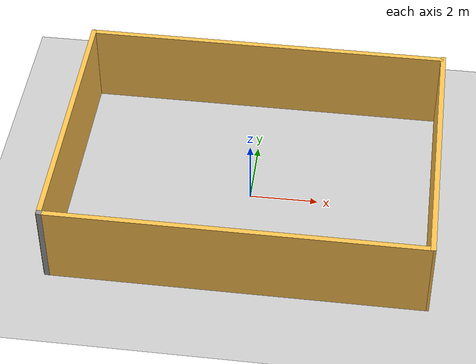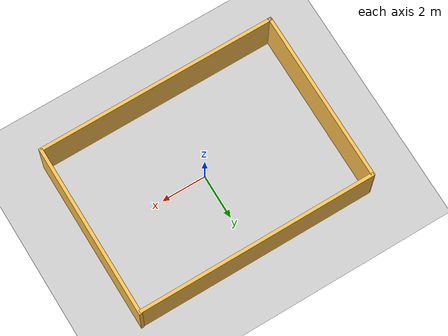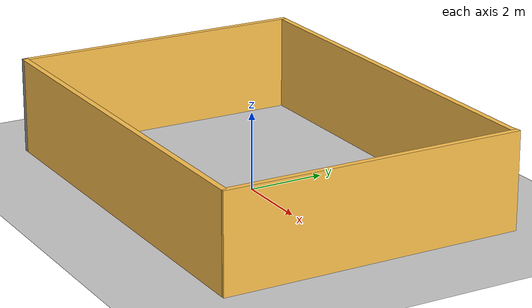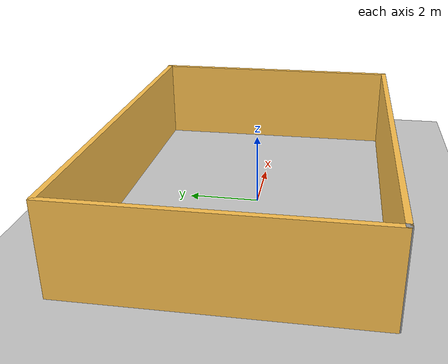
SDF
<sdf version="1.7">
 <world name="default">
  <light name="sun" type="directional">
   <pose>0 0 10 0 -0 0</pose>
   <diffuse>0.8 0.8 0.8 1</diffuse>
   <specular>0.2 0.2 0.2 1</specular>
   <attenuation>
    <range>1000</range>
    <constant>0.9</constant>
    <linear>0.01</linear>
    <quadratic>0.001</quadratic>
   </attenuation>
   <direction>-0.5 0.1 -0.9</direction>
   <spot><inner_angle>0</inner_angle><outer_angle>0</outer_angle><falloff>0</falloff></spot>
  </light>
  <model name="ground_plane">
   <static>1</static>
   <link name="link">
    <collision name="collision">
     <geometry><plane><normal>0 0 1</normal><size>100 100</size></plane></geometry>
     <surface><friction><ode><mu>100</mu><mu2>50</mu2></ode></friction></surface>
    </collision>
    <visual name="visual">
     <cast_shadows>0</cast_shadows>
     <geometry><plane><normal>0 0 1</normal><size>100 100</size></plane></geometry>
     <material>
      <script><uri>file://media/materials/scripts/gazebo.material</uri><name>Gazebo/Grey</name></script>
     </material>
    </visual>
   </link>
  </model>
  <gravity>0 0 -9.8</gravity>
  <magnetic_field>6e-06 2.3e-05 -4.2e-05</magnetic_field>
  <atmosphere type="adiabatic"/>
  <physics type="ode">
   <max_step_size>0.001</max_step_size>
   <real_time_factor>1</real_time_factor>
   <real_time_update_rate>1000</real_time_update_rate>
  </physics>
  <scene><ambient>0.4 0.4 0.4 1</ambient><background>0.7 0.7 0.7 1</background><shadows>1</shadows></scene>
  <audio><device>default</device></audio>
  <spherical_coordinates>
   <surface_model>EARTH_WGS84</surface_model>
   <latitude_deg>0</latitude_deg>
   <longitude_deg>0</longitude_deg>
   <elevation>0</elevation>
   <heading_deg>0</heading_deg>
  </spherical_coordinates>
  <model name="RRC4">
   <link name="Wall_0">
    <pose>-7.52045 -4.14704 0 0 -0 1.5708</pose>
    <inertial>
     <inertia><ixx>0</ixx><ixy>0</ixy><ixz>0</ixz><iyy>0</iyy><iyz>0</iyz><izz>0</izz></inertia>
     <mass>0</mass>
    </inertial>
    <visual name="Wall_0_Visual">
     <pose>0 0 1.25 0 -0 0</pose>
     <geometry><box><size>7.78779 0.15 2.5</size></box></geometry>
     <material>
      <script><uri>file://media/materials/scripts/gazebo.material</uri><name>Gazebo/Grey</name></script>
      <ambient>1 0.764706 0.305882 1</ambient>
      <shader type="pixel"/>
     </material>
     <meta><layer>0</layer></meta>
    </visual>
    <collision name="Wall_0_Collision">
     <pose>0 0 1.25 0 -0 0</pose>
     <geometry><box><size>7.78779 0.15 2.5</size></box></geometry>
     <surface>
      <friction>
       <ode><mu>1</mu><mu2>1</mu2><fdir1>0 0 0</fdir1><slip1>0</slip1><slip2>0</slip2></ode>
       <torsional>
        <coefficient>1</coefficient>
        <patch_radius>0</patch_radius>
        <surface_radius>0</surface_radius>
        <use_patch_radius>1</use_patch_radius>
        <ode><slip>0</slip></ode>
       </torsional>
      </friction>
      <bounce><restitution_coefficient>0</restitution_coefficient><threshold>1e+06</threshold></bounce>
      <contact>
       <collide_without_contact>0</collide_without_contact>
       <collide_without_contact_bitmask>1</collide_without_contact_bitmask>
       <collide_bitmask>1</collide_bitmask>
       <ode>
        <soft_cfm>0</soft_cfm>
        <soft_erp>0.2</soft_erp>
        <kp>1e+13</kp>
        <kd>1</kd>
        <max_vel>0.01</max_vel>
        <min_depth>0</min_depth>
       </ode>
       <bullet>
        <split_impulse>1</split_impulse>
        <split_impulse_penetration_threshold>-0.01</split_impulse_penetration_threshold>
        <soft_cfm>0</soft_cfm>
        <soft_erp>0.2</soft_erp>
        <kp>1e+13</kp>
        <kd>1</kd>
       </bullet>
      </contact>
     </surface>
    </collision>
   </link>
   <link name="Wall_1">
    <pose>-2.18528 -0.320606 0 0 -0 0</pose>
    <inertial>
     <inertia><ixx>0</ixx><ixy>0</ixy><ixz>0</ixz><iyy>0</iyy><iyz>0</iyz><izz>0</izz></inertia>
     <mass>0</mass>
    </inertial>
    <visual name="Wall_1_Visual">
     <pose>0 0 1.25 0 -0 0</pose>
     <geometry><box><size>10.7249 0.15 2.5</size></box></geometry>
     <material>
      <script><uri>file://media/materials/scripts/gazebo.material</uri><name>Gazebo/Grey</name></script>
      <ambient>1 0.764706 0.305882 1</ambient>
      <shader type="pixel"/>
     </material>
     <meta><layer>0</layer></meta>
    </visual>
    <collision name="Wall_1_Collision">
     <pose>0 0 1.25 0 -0 0</pose>
     <geometry><box><size>10.7249 0.15 2.5</size></box></geometry>
     <surface>
      <friction>
       <ode><mu>1</mu><mu2>1</mu2><fdir1>0 0 0</fdir1><slip1>0</slip1><slip2>0</slip2></ode>
       <torsional>
        <coefficient>1</coefficient>
        <patch_radius>0</patch_radius>
        <surface_radius>0</surface_radius>
        <use_patch_radius>1</use_patch_radius>
        <ode><slip>0</slip></ode>
       </torsional>
      </friction>
      <bounce><restitution_coefficient>0</restitution_coefficient><threshold>1e+06</threshold></bounce>
      <contact>
       <collide_without_contact>0</collide_without_contact>
       <collide_without_contact_bitmask>1</collide_without_contact_bitmask>
       <collide_bitmask>1</collide_bitmask>
       <ode>
        <soft_cfm>0</soft_cfm>
        <soft_erp>0.2</soft_erp>
        <kp>1e+13</kp>
        <kd>1</kd>
        <max_vel>0.01</max_vel>
        <min_depth>0</min_depth>
       </ode>
       <bullet>
        <split_impulse>1</split_impulse>
        <split_impulse_penetration_threshold>-0.01</split_impulse_penetration_threshold>
        <soft_cfm>0</soft_cfm>
        <soft_erp>0.2</soft_erp>
        <kp>1e+13</kp>
        <kd>1</kd>
       </bullet>
      </contact>
     </surface>
    </collision>
   </link>
   <link name="Wall_2">
    <pose>3.18117 -4.14297 0 0 0 -1.5708</pose>
    <inertial>
     <inertia><ixx>0</ixx><ixy>0</ixy><ixz>0</ixz><iyy>0</iyy><iyz>0</iyz><izz>0</izz></inertia>
     <mass>0</mass>
    </inertial>
    <visual name="Wall_2_Visual">
     <pose>0 0 1.25 0 -0 0</pose>
     <geometry><box><size>7.84893 0.15 2.5</size></box></geometry>
     <material>
      <script><uri>file://media/materials/scripts/gazebo.material</uri><name>Gazebo/Grey</name></script>
      <ambient>1 0.764706 0.305882 1</ambient>
      <shader type="pixel"/>
     </material>
     <meta><layer>0</layer></meta>
    </visual>
    <collision name="Wall_2_Collision">
     <pose>0 0 1.25 0 -0 0</pose>
     <geometry><box><size>7.84893 0.15 2.5</size></box></geometry>
     <surface>
      <friction>
       <ode><mu>1</mu><mu2>1</mu2><fdir1>0 0 0</fdir1><slip1>0</slip1><slip2>0</slip2></ode>
       <torsional>
        <coefficient>1</coefficient>
        <patch_radius>0</patch_radius>
        <surface_radius>0</surface_radius>
        <use_patch_radius>1</use_patch_radius>
        <ode><slip>0</slip></ode>
       </torsional>
      </friction>
      <bounce><restitution_coefficient>0</restitution_coefficient><threshold>1e+06</threshold></bounce>
      <contact>
       <collide_without_contact>0</collide_without_contact>
       <collide_without_contact_bitmask>1</collide_without_contact_bitmask>
       <collide_bitmask>1</collide_bitmask>
       <ode>
        <soft_cfm>0</soft_cfm>
        <soft_erp>0.2</soft_erp>
        <kp>1e+13</kp>
        <kd>1</kd>
        <max_vel>0.01</max_vel>
        <min_depth>0</min_depth>
       </ode>
       <bullet>
        <split_impulse>1</split_impulse>
        <split_impulse_penetration_threshold>-0.01</split_impulse_penetration_threshold>
        <soft_cfm>0</soft_cfm>
        <soft_erp>0.2</soft_erp>
        <kp>1e+13</kp>
        <kd>1</kd>
       </bullet>
      </contact>
     </surface>
    </collision>
   </link>
   <link name="Wall_3">
    <pose>-2.17773 -7.99999 0 0 -0 3.14159</pose>
    <inertial>
     <inertia><ixx>0</ixx><ixy>0</ixy><ixz>0</ixz><iyy>0</iyy><iyz>0</iyz><izz>0</izz></inertia>
     <mass>0</mass>
    </inertial>
    <visual name="Wall_3_Visual">
     <pose>0 0 1.25 0 -0 0</pose>
     <geometry><box><size>10.7153 0.15 2.5</size></box></geometry>
     <material>
      <script><uri>file://media/materials/scripts/gazebo.material</uri><name>Gazebo/Grey</name></script>
      <ambient>1 0.764706 0.305882 1</ambient>
      <shader type="pixel"/>
     </material>
     <meta><layer>0</layer></meta>
    </visual>
    <collision name="Wall_3_Collision">
     <pose>0 0 1.25 0 -0 0</pose>
     <geometry><box><size>10.7153 0.15 2.5</size></box></geometry>
     <surface>
      <friction>
       <ode><mu>1</mu><mu2>1</mu2><fdir1>0 0 0</fdir1><slip1>0</slip1><slip2>0</slip2></ode>
       <torsional>
        <coefficient>1</coefficient>
        <patch_radius>0</patch_radius>
        <surface_radius>0</surface_radius>
        <use_patch_radius>1</use_patch_radius>
        <ode><slip>0</slip></ode>
       </torsional>
      </friction>
      <bounce><restitution_coefficient>0</restitution_coefficient><threshold>1e+06</threshold></bounce>
      <contact>
       <collide_without_contact>0</collide_without_contact>
       <collide_without_contact_bitmask>1</collide_without_contact_bitmask>
       <collide_bitmask>1</collide_bitmask>
       <ode>
        <soft_cfm>0</soft_cfm>
        <soft_erp>0.2</soft_erp>
        <kp>1e+13</kp>
        <kd>1</kd>
        <max_vel>0.01</max_vel>
        <min_depth>0</min_depth>
       </ode>
       <bullet>
        <split_impulse>1</split_impulse>
        <split_impulse_penetration_threshold>-0.01</split_impulse_penetration_threshold>
        <soft_cfm>0</soft_cfm>
        <soft_erp>0.2</soft_erp>
        <kp>1e+13</kp>
        <kd>1</kd>
       </bullet>
      </contact>
     </surface>
    </collision>
   </link>
   <link name="Wall_4">
    <pose>-7.5 -8 0 0 -0 0</pose>
    <visual name="Wall_4_Visual">
     <pose>0 0 1.25 0 -0 0</pose>
     <geometry><box><size>0.15 0.15 2.5</size></box></geometry>
     <material>
      <script><uri>file://media/materials/scripts/gazebo.material</uri><name>Gazebo/Grey</name></script>
      <ambient>1 1 1 1</ambient>
      <shader type="pixel"/>
     </material>
     <meta><layer>0</layer></meta>
    </visual>
    <collision name="Wall_4_Collision">
     <pose>0 0 1.25 0 -0 0</pose>
     <geometry><box><size>0.15 0.15 2.5</size></box></geometry>
     <surface>
      <friction>
       <ode><mu>1</mu><mu2>1</mu2><fdir1>0 0 0</fdir1><slip1>0</slip1><slip2>0</slip2></ode>
       <torsional>
        <coefficient>1</coefficient>
        <patch_radius>0</patch_radius>
        <surface_radius>0</surface_radius>
        <use_patch_radius>1</use_patch_radius>
        <ode><slip>0</slip></ode>
       </torsional>
      </friction>
      <bounce><restitution_coefficient>0</restitution_coefficient><threshold>1e+06</threshold></bounce>
      <contact>
       <collide_without_contact>0</collide_without_contact>
       <collide_without_contact_bitmask>1</collide_without_contact_bitmask>
       <collide_bitmask>1</collide_bitmask>
       <ode>
        <soft_cfm>0</soft_cfm>
        <soft_erp>0.2</soft_erp>
        <kp>1e+13</kp>
        <kd>1</kd>
        <max_vel>0.01</max_vel>
        <min_depth>0</min_depth>
       </ode>
       <bullet>
        <split_impulse>1</split_impulse>
        <split_impulse_penetration_threshold>-0.01</split_impulse_penetration_threshold>
        <soft_cfm>0</soft_cfm>
        <soft_erp>0.2</soft_erp>
        <kp>1e+13</kp>
        <kd>1</kd>
       </bullet>
      </contact>
     </surface>
    </collision>
   </link>
   <static>1</static>
   <pose>2.17451 4.31178 0 0 -0 0</pose>
  </model>
 </world>
</sdf>
